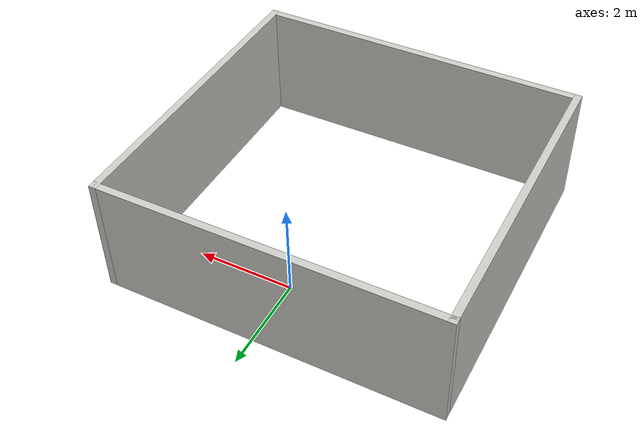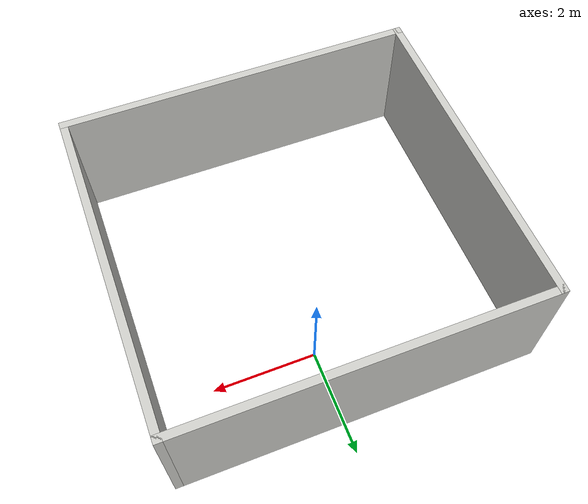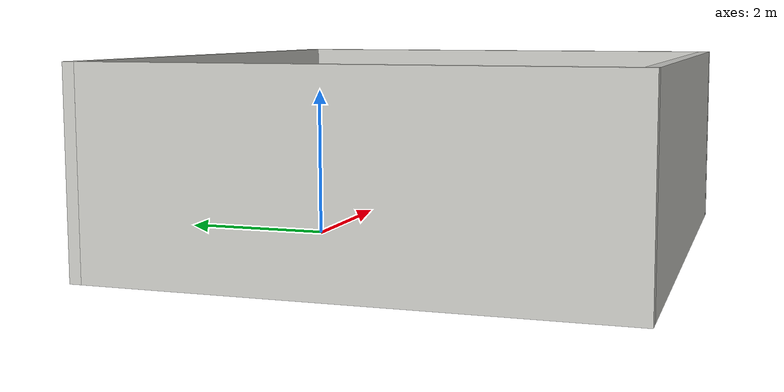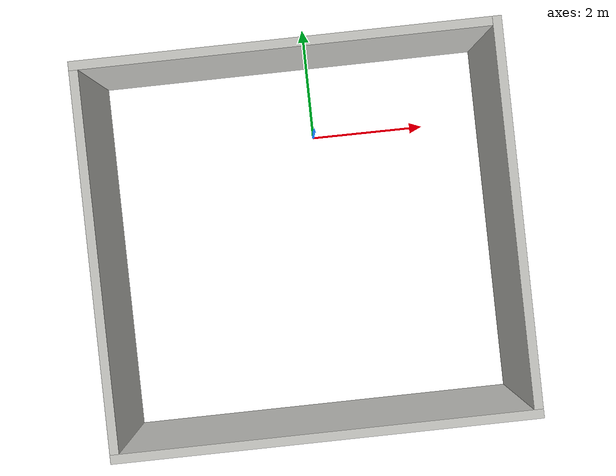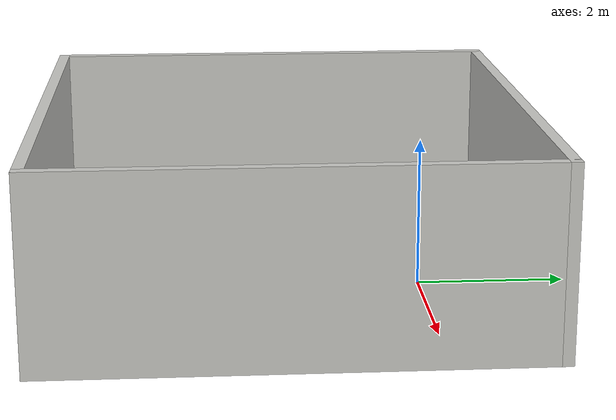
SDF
<?xml version='1.0'?>
<sdf version='1.7'>
  <model name='little_room'>
    <pose>-0.335 -1.805 0 0 -0 0</pose>
    <link name='Wall_0'>
      <collision name='Wall_0_Collision'>
        <geometry>
          <box>
            <size>7 0.15 2.5</size>
          </box>
        </geometry>
        <pose>0 0 1.25 0 -0 0</pose>
      </collision>
      <visual name='Wall_0_Visual'>
        <pose>0 0 1.25 0 -0 0</pose>
        <geometry>
          <box>
            <size>7 0.15 2.5</size>
          </box>
        </geometry>
        <material>
          <script>
            <uri>file://media/materials/scripts/gazebo.material</uri>
            <name>Gazebo/CeilingTiled</name>
          </script>
          <ambient>1 1 1 1</ambient>
        </material>
        <meta>
          <layer>0</layer>
        </meta>
      </visual>
      <pose>0 -3.175 0 0 -0 0</pose>
    </link>
    <link name='Wall_1'>
      <collision name='Wall_1_Collision'>
        <geometry>
          <box>
            <size>6.5 0.15 2.5</size>
          </box>
        </geometry>
        <pose>0 0 1.25 0 -0 0</pose>
      </collision>
      <visual name='Wall_1_Visual'>
        <pose>0 0 1.25 0 -0 0</pose>
        <geometry>
          <box>
            <size>6.5 0.15 2.5</size>
          </box>
        </geometry>
        <material>
          <script>
            <uri>file://media/materials/scripts/gazebo.material</uri>
            <name>Gazebo/CeilingTiled</name>
          </script>
          <ambient>1 1 1 1</ambient>
        </material>
        <meta>
          <layer>0</layer>
        </meta>
      </visual>
      <pose>3.425 -0 0 0 -0 1.5708</pose>
    </link>
    <link name='Wall_2'>
      <collision name='Wall_2_Collision'>
        <geometry>
          <box>
            <size>7 0.15 2.5</size>
          </box>
        </geometry>
        <pose>0 0 1.25 0 -0 0</pose>
      </collision>
      <visual name='Wall_2_Visual'>
        <pose>0 0 1.25 0 -0 0</pose>
        <geometry>
          <box>
            <size>7 0.15 2.5</size>
          </box>
        </geometry>
        <material>
          <script>
            <uri>file://media/materials/scripts/gazebo.material</uri>
            <name>Gazebo/CeilingTiled</name>
          </script>
          <ambient>1 1 1 1</ambient>
        </material>
        <meta>
          <layer>0</layer>
        </meta>
      </visual>
      <pose>0 3.175 0 0 -0 3.14159</pose>
    </link>
    <link name='Wall_3'>
      <collision name='Wall_3_Collision'>
        <geometry>
          <box>
            <size>6.5 0.15 2.5</size>
          </box>
        </geometry>
        <pose>0 0 1.25 0 -0 0</pose>
      </collision>
      <visual name='Wall_3_Visual'>
        <pose>0 0 1.25 0 -0 0</pose>
        <geometry>
          <box>
            <size>6.5 0.15 2.5</size>
          </box>
        </geometry>
        <material>
          <script>
            <uri>file://media/materials/scripts/gazebo.material</uri>
            <name>Gazebo/CeilingTiled</name>
          </script>
          <ambient>1 1 1 1</ambient>
        </material>
        <meta>
          <layer>0</layer>
        </meta>
      </visual>
      <pose>-3.425 -0 0 0 -0 -1.5708</pose>
    </link>
    <static>1</static>
  </model>
</sdf>
